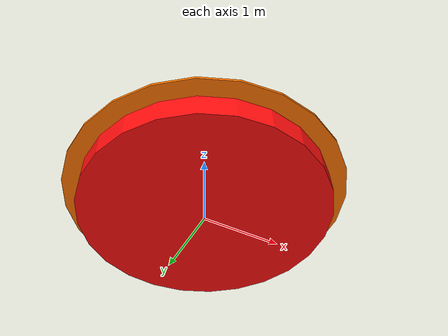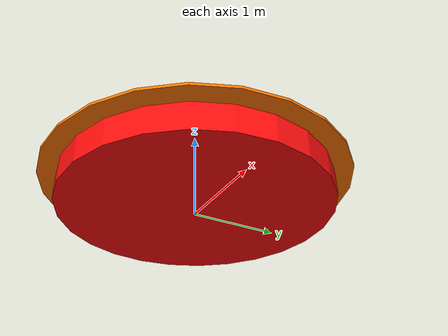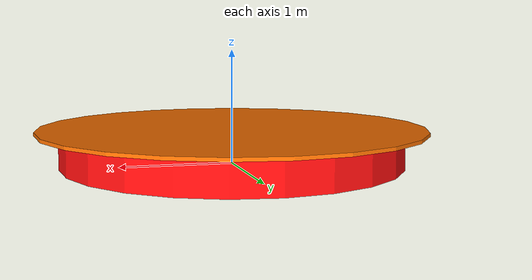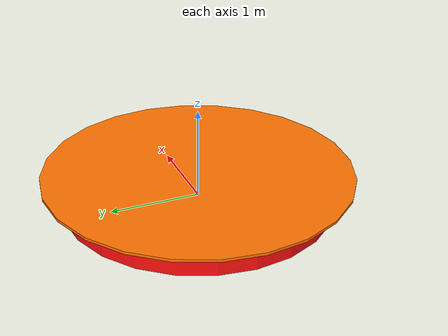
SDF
<?xml version="1.0"?>
<sdf version="1.9">
  <model name="confirmed_target">

    <static>true</static>

    <link name="target_link">

      <!-- Solid physical platform -->
      <collision name="target_collision">
        <pose>0 0 0.15 0 0 0</pose>

        <geometry>
          <cylinder>
            <radius>1.50</radius>
            <length>0.30</length>
          </cylinder>
        </geometry>
      </collision>

      <!-- Visible red platform -->
      <visual name="target_visual">
        <pose>0 0 0.15 0 0 0</pose>

        <geometry>
          <cylinder>
            <radius>1.50</radius>
            <length>0.30</length>
          </cylinder>
        </geometry>

        <material>
          <ambient>1 0.05 0.05 1</ambient>
          <diffuse>1 0.05 0.05 1</diffuse>
          <emissive>0.35 0 0 1</emissive>
        </material>
      </visual>

      <!-- Orange ring to make the target easy to see -->
      <visual name="target_outer_ring">
        <pose>0 0 0.31 0 0 0</pose>

        <geometry>
          <cylinder>
            <radius>1.70</radius>
            <length>0.03</length>
          </cylinder>
        </geometry>

        <material>
          <ambient>1 0.45 0 1</ambient>
          <diffuse>1 0.45 0 1</diffuse>
          <emissive>0.40 0.15 0 1</emissive>
        </material>
      </visual>

    </link>

  </model>
</sdf>
